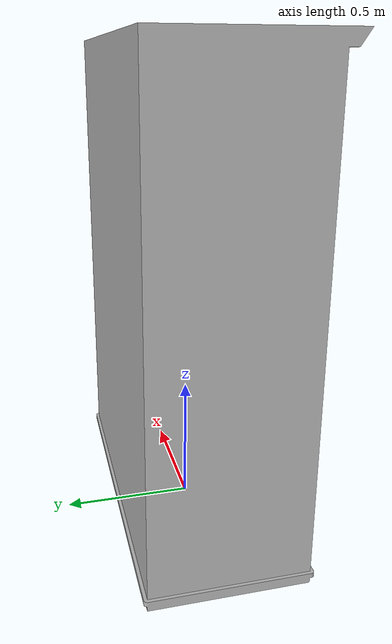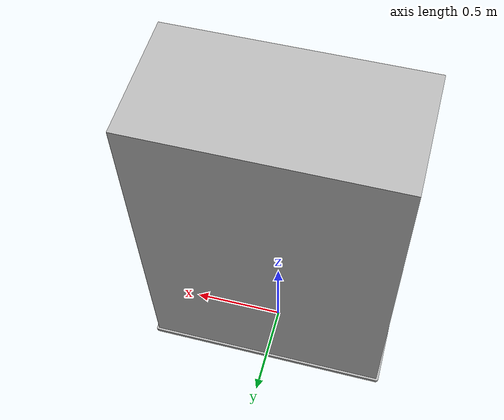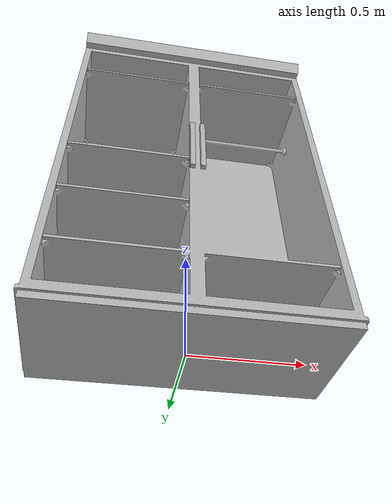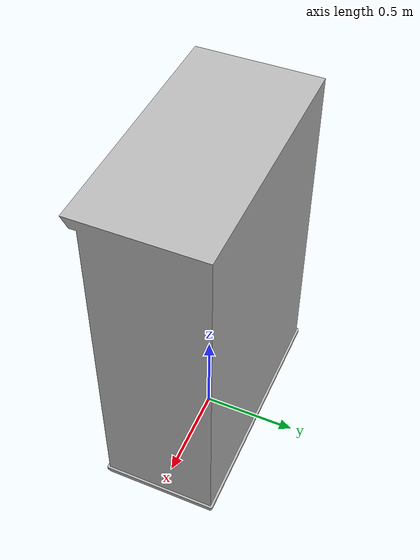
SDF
<?xml version="1.0" ?>
<sdf version="1.6" xmlns:drake="drake.mit.edu">
  <model name="storage_cabinet">
    <link name="link_storage_cabinet_body">
      <inertial>
        <pose frame="">-7.0000e-03 6.1000e-02 9.4000e-01 0.0000e+00 0.0000e+00 0.0000e+00</pose>
        <mass>198.026</mass>
        <inertia>
          <ixx>92.421</ixx>
          <ixy>0</ixy>
          <ixz>0</ixz>
          <iyy>117.554</iyy>
          <iyz>0</iyz>
          <izz>39.481</izz>
        </inertia>
      </inertial>
      <visual name="link_storage_cabinet_body">
        <pose frame="">0.0000e+00 0.0000e+00 0.0000e+00 0.0000e+00 0.0000e+00 0.0000e+00</pose>
        <geometry>
          <mesh>
            <uri>meshes/link_storage_cabinet_body.obj</uri>
            <scale>1.0000e+00 1.0000e+00 1.0000e+00</scale>
          </mesh>
        </geometry>
        <material>
          <drake:diffuse_map>meshes/link_storage_cabinet_body_Bake1_pbr_diffuse.png</drake:diffuse_map>
          <drake:normal_map>meshes/link_storage_cabinet_body_Bake1_pbr_normal.png</drake:normal_map>
          <drake:specular_map>meshes/link_storage_cabinet_body_Bake1_pbr_specular.png</drake:specular_map>
          <drake:roughness_map>meshes/link_storage_cabinet_body_Bake1_pbr_roughness.png</drake:roughness_map>
          <drake:metalness_map>meshes/link_storage_cabinet_body_Bake1_pbr_metalness.png</drake:metalness_map>
        </material>
      </visual>
      <collision name="link_storage_cabinet_body.001_hull_1">
        <pose frame="">0.0000e+00 0.0000e+00 0.0000e+00 0.0000e+00 0.0000e+00 0.0000e+00</pose>
        <geometry>
          <mesh>
            <uri>meshes/link_storage_cabinet_body.001_hull_1.obj</uri>
            <scale>1.0000e+00 1.0000e+00 1.0000e+00</scale>
            <drake:declare_convex/>
          </mesh>
        </geometry>
      </collision>
      <collision name="link_storage_cabinet_body.001_hull_2">
        <pose frame="">0.0000e+00 0.0000e+00 0.0000e+00 0.0000e+00 0.0000e+00 0.0000e+00</pose>
        <geometry>
          <mesh>
            <uri>meshes/link_storage_cabinet_body.001_hull_2.obj</uri>
            <scale>1.0000e+00 1.0000e+00 1.0000e+00</scale>
            <drake:declare_convex/>
          </mesh>
        </geometry>
      </collision>
      <collision name="link_storage_cabinet_body.001_hull_3">
        <pose frame="">0.0000e+00 0.0000e+00 0.0000e+00 0.0000e+00 0.0000e+00 0.0000e+00</pose>
        <geometry>
          <mesh>
            <uri>meshes/link_storage_cabinet_body.001_hull_3.obj</uri>
            <scale>1.0000e+00 1.0000e+00 1.0000e+00</scale>
            <drake:declare_convex/>
          </mesh>
        </geometry>
      </collision>
      <collision name="link_storage_cabinet_body.001_hull_4">
        <pose frame="">0.0000e+00 0.0000e+00 0.0000e+00 0.0000e+00 0.0000e+00 0.0000e+00</pose>
        <geometry>
          <mesh>
            <uri>meshes/link_storage_cabinet_body.001_hull_4.obj</uri>
            <scale>1.0000e+00 1.0000e+00 1.0000e+00</scale>
            <drake:declare_convex/>
          </mesh>
        </geometry>
      </collision>
      <collision name="link_storage_cabinet_body.001_hull_5">
        <pose frame="">0.0000e+00 0.0000e+00 0.0000e+00 0.0000e+00 0.0000e+00 0.0000e+00</pose>
        <geometry>
          <mesh>
            <uri>meshes/link_storage_cabinet_body.001_hull_5.obj</uri>
            <scale>1.0000e+00 1.0000e+00 1.0000e+00</scale>
            <drake:declare_convex/>
          </mesh>
        </geometry>
      </collision>
      <collision name="link_storage_cabinet_body.001_hull_6">
        <pose frame="">0.0000e+00 0.0000e+00 0.0000e+00 0.0000e+00 0.0000e+00 0.0000e+00</pose>
        <geometry>
          <mesh>
            <uri>meshes/link_storage_cabinet_body.001_hull_6.obj</uri>
            <scale>1.0000e+00 1.0000e+00 1.0000e+00</scale>
            <drake:declare_convex/>
          </mesh>
        </geometry>
      </collision>
      <collision name="link_storage_cabinet_body.001_hull_7">
        <pose frame="">0.0000e+00 0.0000e+00 0.0000e+00 0.0000e+00 0.0000e+00 0.0000e+00</pose>
        <geometry>
          <mesh>
            <uri>meshes/link_storage_cabinet_body.001_hull_7.obj</uri>
            <scale>1.0000e+00 1.0000e+00 1.0000e+00</scale>
            <drake:declare_convex/>
          </mesh>
        </geometry>
      </collision>
      <collision name="link_storage_cabinet_body.002_hull_1">
        <pose frame="">0.0000e+00 0.0000e+00 0.0000e+00 0.0000e+00 0.0000e+00 0.0000e+00</pose>
        <geometry>
          <mesh>
            <uri>meshes/link_storage_cabinet_body.002_hull_1.obj</uri>
            <scale>1.0000e+00 1.0000e+00 1.0000e+00</scale>
            <drake:declare_convex/>
          </mesh>
        </geometry>
      </collision>
      <collision name="link_storage_cabinet_body.003_hull_1">
        <pose frame="">0.0000e+00 0.0000e+00 0.0000e+00 0.0000e+00 0.0000e+00 0.0000e+00</pose>
        <geometry>
          <mesh>
            <uri>meshes/link_storage_cabinet_body.003_hull_1.obj</uri>
            <scale>1.0000e+00 1.0000e+00 1.0000e+00</scale>
            <drake:declare_convex/>
          </mesh>
        </geometry>
      </collision>
      <collision name="link_storage_cabinet_body.004_hull_1">
        <pose frame="">0.0000e+00 0.0000e+00 0.0000e+00 0.0000e+00 0.0000e+00 0.0000e+00</pose>
        <geometry>
          <mesh>
            <uri>meshes/link_storage_cabinet_body.004_hull_1.obj</uri>
            <scale>1.0000e+00 1.0000e+00 1.0000e+00</scale>
            <drake:declare_convex/>
          </mesh>
        </geometry>
      </collision>
      <collision name="link_storage_cabinet_body.005_hull_1">
        <pose frame="">0.0000e+00 0.0000e+00 0.0000e+00 0.0000e+00 0.0000e+00 0.0000e+00</pose>
        <geometry>
          <mesh>
            <uri>meshes/link_storage_cabinet_body.005_hull_1.obj</uri>
            <scale>1.0000e+00 1.0000e+00 1.0000e+00</scale>
            <drake:declare_convex/>
          </mesh>
        </geometry>
      </collision>
      <collision name="link_storage_cabinet_body.006_hull_1">
        <pose frame="">0.0000e+00 0.0000e+00 0.0000e+00 0.0000e+00 0.0000e+00 0.0000e+00</pose>
        <geometry>
          <mesh>
            <uri>meshes/link_storage_cabinet_body.006_hull_1.obj</uri>
            <scale>1.0000e+00 1.0000e+00 1.0000e+00</scale>
            <drake:declare_convex/>
          </mesh>
        </geometry>
      </collision>
      <collision name="link_storage_cabinet_body.007_hull_1">
        <pose frame="">0.0000e+00 0.0000e+00 0.0000e+00 0.0000e+00 0.0000e+00 0.0000e+00</pose>
        <geometry>
          <mesh>
            <uri>meshes/link_storage_cabinet_body.007_hull_1.obj</uri>
            <scale>1.0000e+00 1.0000e+00 1.0000e+00</scale>
            <drake:declare_convex/>
          </mesh>
        </geometry>
      </collision>
      <collision name="link_storage_cabinet_body.008_hull_1">
        <pose frame="">0.0000e+00 0.0000e+00 0.0000e+00 0.0000e+00 0.0000e+00 0.0000e+00</pose>
        <geometry>
          <mesh>
            <uri>meshes/link_storage_cabinet_body.008_hull_1.obj</uri>
            <scale>1.0000e+00 1.0000e+00 1.0000e+00</scale>
            <drake:declare_convex/>
          </mesh>
        </geometry>
      </collision>
    </link>
    <link name="link_storage_cabinet_door_L">
      <inertial>
        <pose frame="">3.2400e-01 -3.1100e-01 9.3400e-01 0.0000e+00 0.0000e+00 0.0000e+00</pose>
        <mass>15.273</mass>
        <inertia>
          <ixx>3.683</ixx>
          <ixy>0</ixy>
          <ixz>0</ixz>
          <iyy>4.186</iyy>
          <iyz>0</iyz>
          <izz>0.506</izz>
        </inertia>
      </inertial>
      <visual name="link_storage_cabinet_door_L">
        <pose frame="">0.0000e+00 0.0000e+00 0.0000e+00 0.0000e+00 0.0000e+00 0.0000e+00</pose>
        <geometry>
          <mesh>
            <uri>meshes/link_storage_cabinet_door_L.obj</uri>
            <scale>1.0000e+00 1.0000e+00 1.0000e+00</scale>
          </mesh>
        </geometry>
        <material>
          <drake:diffuse_map>meshes/link_storage_cabinet_door_L_Bake1_pbr_diffuse.png</drake:diffuse_map>
          <drake:normal_map>meshes/link_storage_cabinet_door_L_Bake1_pbr_normal.png</drake:normal_map>
          <drake:specular_map>meshes/link_storage_cabinet_door_L_Bake1_pbr_specular.png</drake:specular_map>
          <drake:roughness_map>meshes/link_storage_cabinet_door_L_Bake1_pbr_roughness.png</drake:roughness_map>
          <drake:metalness_map>meshes/link_storage_cabinet_door_L_Bake1_pbr_metalness.png</drake:metalness_map>
        </material>
      </visual>
      <collision name="Cube">
        <pose frame="">0.0000e+00 0.0000e+00 0.0000e+00 0.0000e+00 0.0000e+00 0.0000e+00</pose>
        <geometry>
          <mesh>
            <uri>meshes/Cube.obj</uri>
            <scale>1.0000e+00 1.0000e+00 1.0000e+00</scale>
            <drake:declare_convex/>
          </mesh>
        </geometry>
      </collision>
      <collision name="Cube.001">
        <pose frame="">0.0000e+00 0.0000e+00 0.0000e+00 0.0000e+00 0.0000e+00 0.0000e+00</pose>
        <geometry>
          <mesh>
            <uri>meshes/Cube.001.obj</uri>
            <scale>1.0000e+00 1.0000e+00 1.0000e+00</scale>
            <drake:declare_convex/>
          </mesh>
        </geometry>
      </collision>
      <collision name="Cube.002">
        <pose frame="">0.0000e+00 0.0000e+00 0.0000e+00 0.0000e+00 0.0000e+00 0.0000e+00</pose>
        <geometry>
          <mesh>
            <uri>meshes/Cube.002.obj</uri>
            <scale>1.0000e+00 1.0000e+00 1.0000e+00</scale>
            <drake:declare_convex/>
          </mesh>
        </geometry>
      </collision>
      <collision name="link_storage_cabinet_door_L.001_hull_1">
        <pose frame="">0.0000e+00 0.0000e+00 0.0000e+00 0.0000e+00 0.0000e+00 0.0000e+00</pose>
        <geometry>
          <mesh>
            <uri>meshes/link_storage_cabinet_door_L.001_hull_1.obj</uri>
            <scale>1.0000e+00 1.0000e+00 1.0000e+00</scale>
            <drake:declare_convex/>
          </mesh>
        </geometry>
      </collision>
    </link>
    <link name="link_storage_cabinet_door_R">
      <inertial>
        <pose frame="">-3.2400e-01 -3.1100e-01 9.3400e-01 0.0000e+00 0.0000e+00 0.0000e+00</pose>
        <mass>15.276</mass>
        <inertia>
          <ixx>3.684</ixx>
          <ixy>0</ixy>
          <ixz>0</ixz>
          <iyy>4.188</iyy>
          <iyz>0</iyz>
          <izz>0.506</izz>
        </inertia>
      </inertial>
      <visual name="link_storage_cabinet_door_R">
        <pose frame="">0.0000e+00 0.0000e+00 0.0000e+00 0.0000e+00 0.0000e+00 0.0000e+00</pose>
        <geometry>
          <mesh>
            <uri>meshes/link_storage_cabinet_door_R.obj</uri>
            <scale>1.0000e+00 1.0000e+00 1.0000e+00</scale>
          </mesh>
        </geometry>
        <material>
          <drake:diffuse_map>meshes/link_storage_cabinet_door_R_Bake1_pbr_diffuse.png</drake:diffuse_map>
          <drake:normal_map>meshes/link_storage_cabinet_door_R_Bake1_pbr_normal.png</drake:normal_map>
          <drake:specular_map>meshes/link_storage_cabinet_door_R_Bake1_pbr_specular.png</drake:specular_map>
          <drake:roughness_map>meshes/link_storage_cabinet_door_R_Bake1_pbr_roughness.png</drake:roughness_map>
          <drake:metalness_map>meshes/link_storage_cabinet_door_R_Bake1_pbr_metalness.png</drake:metalness_map>
        </material>
      </visual>
      <collision name="Cube.003">
        <pose frame="">0.0000e+00 0.0000e+00 0.0000e+00 0.0000e+00 0.0000e+00 0.0000e+00</pose>
        <geometry>
          <mesh>
            <uri>meshes/Cube.003.obj</uri>
            <scale>1.0000e+00 1.0000e+00 1.0000e+00</scale>
            <drake:declare_convex/>
          </mesh>
        </geometry>
      </collision>
      <collision name="Cube.004">
        <pose frame="">0.0000e+00 0.0000e+00 0.0000e+00 0.0000e+00 0.0000e+00 0.0000e+00</pose>
        <geometry>
          <mesh>
            <uri>meshes/Cube.004.obj</uri>
            <scale>1.0000e+00 1.0000e+00 1.0000e+00</scale>
            <drake:declare_convex/>
          </mesh>
        </geometry>
      </collision>
      <collision name="Cube.005">
        <pose frame="">0.0000e+00 0.0000e+00 0.0000e+00 0.0000e+00 0.0000e+00 0.0000e+00</pose>
        <geometry>
          <mesh>
            <uri>meshes/Cube.005.obj</uri>
            <scale>1.0000e+00 1.0000e+00 1.0000e+00</scale>
            <drake:declare_convex/>
          </mesh>
        </geometry>
      </collision>
      <collision name="link_storage_cabinet_door_R.001_hull_1">
        <pose frame="">0.0000e+00 0.0000e+00 0.0000e+00 0.0000e+00 0.0000e+00 0.0000e+00</pose>
        <geometry>
          <mesh>
            <uri>meshes/link_storage_cabinet_door_R.001_hull_1.obj</uri>
            <scale>1.0000e+00 1.0000e+00 1.0000e+00</scale>
            <drake:declare_convex/>
          </mesh>
        </geometry>
      </collision>
    </link>
    <joint name="link_storage_cabinet_body_link_storage_cabinet_door_L" type="revolute">
      <child>link_storage_cabinet_door_L</child>
      <parent>link_storage_cabinet_body</parent>
      <pose frame="">6.4861e-01 -2.9715e-01 9.5511e-01 0.0000e+00 -0.0000e+00 0.0000e+00</pose>
      <axis>
        <xyz>0.0 0.0 1.0</xyz>
        <limit>
          <effort>0</effort>
          <lower>0.0</lower>
          <upper>1.832595705986023</upper>
        </limit>
        <dynamics>
          <damping>1.0</damping>
        </dynamics>
        <use_parent_model_frame>1</use_parent_model_frame>
      </axis>
    </joint>
    <joint name="link_storage_cabinet_body_link_storage_cabinet_door_R" type="revolute">
      <child>link_storage_cabinet_door_R</child>
      <parent>link_storage_cabinet_body</parent>
      <pose frame="">-6.4853e-01 -2.9713e-01 9.5511e-01 0.0000e+00 -0.0000e+00 0.0000e+00</pose>
      <axis>
        <xyz>0.0 0.0 1.0</xyz>
        <limit>
          <effort>0</effort>
          <lower>-1.832595705986023</lower>
          <upper>0.0</upper>
        </limit>
        <dynamics>
          <damping>1.0</damping>
        </dynamics>
        <use_parent_model_frame>1</use_parent_model_frame>
      </axis>
    </joint>
  </model>
</sdf>
